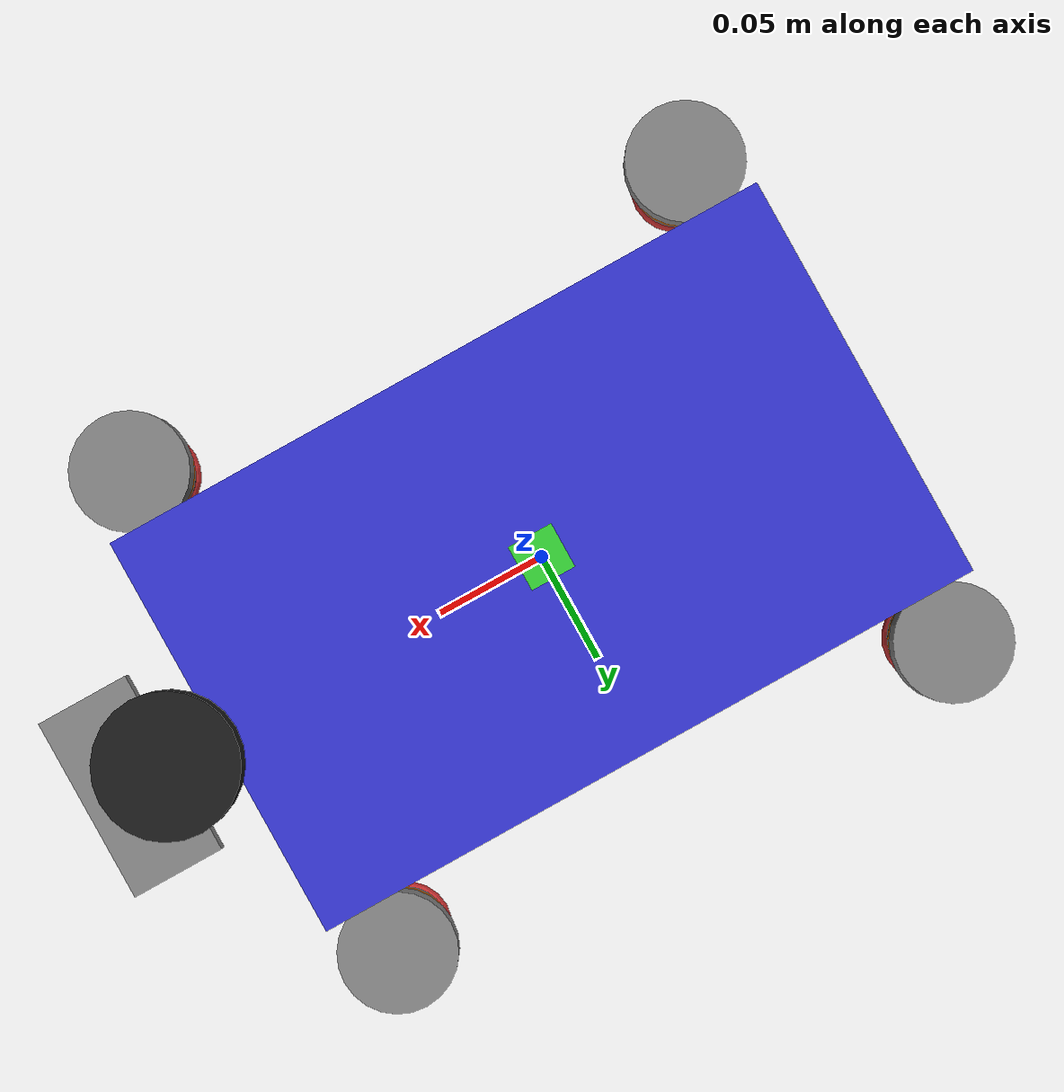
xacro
<?xml version="1.0"?>
<robot name="puppy" xmlns:xacro="http://www.ros.org/wiki/xacro">

  <xacro:arg name="use_planar_move" default="true"/>

  <!-- Include all xacro files -->
  <xacro:include filename="$(find puppy_description)/urdf/materials.xacro"/>
  <xacro:include filename="$(find puppy_description)/urdf/macros.xacro"/>
  <xacro:include filename="$(find puppy_description)/urdf/torso.xacro"/>
  <xacro:include filename="$(find puppy_description)/urdf/leg.xacro"/>
  <xacro:include filename="$(find puppy_description)/urdf/sensors.xacro"/>
  <xacro:include filename="$(find puppy_description)/urdf/gazebo_control.xacro"/>

  <!-- Robot parameters -->
  <xacro:property name="body_length" value="0.30"/>
  <xacro:property name="body_width" value="0.18"/>
  <xacro:property name="body_height" value="0.10"/>
  <xacro:property name="body_mass" value="2.5"/>

  <xacro:property name="L1" value="0.105"/>
  <xacro:property name="L2" value="0.115"/>
  <xacro:property name="thigh_radius" value="0.022"/>
  <xacro:property name="thigh_length" value="${L1}"/>
  <xacro:property name="calf_radius" value="0.018"/>
  <xacro:property name="calf_length" value="${L2}"/>
  <xacro:property name="hip_radius" value="0.025"/>
  <xacro:property name="hip_length" value="0.045"/>
  <xacro:property name="leg_mass" value="0.20"/>

  <xacro:property name="stand_height" value="0.205"/>

  <!-- Build the robot -->
  <xacro:torso/>

  <!-- 4 legs: FR, FL, RR, RL -->
  <xacro:leg prefix="FR" side="front" y_offset="${-body_width/2 - hip_length/2}"/>
  <xacro:leg prefix="FL" side="front" y_offset="${body_width/2 + hip_length/2}"/>
  <xacro:leg prefix="RR" side="rear"  y_offset="${-body_width/2 - hip_length/2}"/>
  <xacro:leg prefix="RL" side="rear"  y_offset="${body_width/2 + hip_length/2}"/>

  <!-- Sensors -->
  <xacro:sensors/>

  <!-- Gazebo control -->
  <xacro:gazebo_control use_planar_move="$(arg use_planar_move)"/>

</robot>

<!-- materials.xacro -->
<robot name="materials" xmlns:xacro="http://www.ros.org/wiki/xacro">

  <material name="black">
    <color rgba="0.1 0.1 0.1 1.0"/>
  </material>

  <material name="white">
    <color rgba="0.9 0.9 0.9 1.0"/>
  </material>

  <material name="blue">
    <color rgba="0.2 0.2 0.8 1.0"/>
  </material>

  <material name="red">
    <color rgba="0.8 0.2 0.2 1.0"/>
  </material>

  <material name="green">
    <color rgba="0.2 0.8 0.2 1.0"/>
  </material>

  <material name="grey">
    <color rgba="0.5 0.5 0.5 1.0"/>
  </material>

  <material name="orange">
    <color rgba="1.0 0.5 0.0 1.0"/>
  </material>

</robot>

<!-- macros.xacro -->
<robot name="macros" xmlns:xacro="http://www.ros.org/wiki/xacro">

  <!-- Inertia macro for a box -->
  <xacro:macro name="box_inertia" params="m w h d">
    <inertial>
      <mass value="${m}"/>
      <origin xyz="0 0 0" rpy="0 0 0"/>
      <inertia ixx="${m*(h*h+d*d)/12.0}" ixy="0" ixz="0"
               iyy="${m*(w*w+d*d)/12.0}" iyz="0"
               izz="${m*(w*w+h*h)/12.0}"/>
    </inertial>
  </xacro:macro>

  <!-- Inertia macro for a cylinder -->
  <xacro:macro name="cylinder_inertia" params="m r l">
    <inertial>
      <mass value="${m}"/>
      <origin xyz="0 0 0" rpy="0 0 0"/>
      <inertia ixx="${m*(3*r*r+l*l)/12.0}" ixy="0" ixz="0"
               iyy="${m*(3*r*r+l*l)/12.0}" iyz="0"
               izz="${m*r*r/2.0}"/>
    </inertial>
  </xacro:macro>

  <!-- Inertia macro for a sphere -->
  <xacro:macro name="sphere_inertia" params="m r">
    <inertial>
      <mass value="${m}"/>
      <origin xyz="0 0 0" rpy="0 0 0"/>
      <inertia ixx="${2*m*r*r/5.0}" ixy="0" ixz="0"
               iyy="${2*m*r*r/5.0}" iyz="0"
               izz="${2*m*r*r/5.0}"/>
    </inertial>
  </xacro:macro>

  <!-- Transmission macro -->
  <xacro:macro name="transmission_block" params="joint_name">
    <transmission name="${joint_name}_trans">
      <type>transmission_interface/SimpleTransmission</type>
      <joint name="${joint_name}">
        <hardwareInterface>hardware_interface/EffortJointInterface</hardwareInterface>
      </joint>
      <actuator name="${joint_name}_motor">
        <hardwareInterface>hardware_interface/EffortJointInterface</hardwareInterface>
        <mechanicalReduction>1</mechanicalReduction>
      </actuator>
    </transmission>
  </xacro:macro>

</robot>

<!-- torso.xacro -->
<robot name="torso" xmlns:xacro="http://www.ros.org/wiki/xacro">

  <xacro:macro name="torso">

    <!-- Base link (robot root) -->
    <link name="base_link">
      <visual>
        <origin xyz="0 0 0" rpy="0 0 0"/>
        <geometry>
          <box size="${body_length} ${body_width} ${body_height}"/>
        </geometry>
        <material name="blue"/>
      </visual>
      <collision>
        <origin xyz="0 0 0" rpy="0 0 0"/>
        <geometry>
          <box size="${body_length} ${body_width} ${body_height}"/>
        </geometry>
      </collision>
      <xacro:box_inertia m="${body_mass}" w="${body_width}" h="${body_height}" d="${body_length}"/>
    </link>

    <!-- base_footprint: projected on ground (for Nav2), must be root parent -->
    <link name="base_footprint"/>
    <joint name="base_footprint_to_base_link" type="fixed">
      <parent link="base_footprint"/>
      <child link="base_link"/>
      <origin xyz="0 0 ${stand_height}" rpy="0 0 0"/>
    </joint>

    <!-- Gazebo friction for base_link -->
    <gazebo reference="base_link">
      <material>Gazebo/Blue</material>
    </gazebo>

  </xacro:macro>

</robot>

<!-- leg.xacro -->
<robot name="leg" xmlns:xacro="http://www.ros.org/wiki/xacro">

  <!-- Leg macro: 3-DoF (hip_yaw, hip_pitch, knee) -->
  <xacro:macro name="leg" params="prefix side y_offset">

    <!-- X position: front legs at +x, rear legs at -x -->
    <xacro:if value="${side == 'front'}">
      <xacro:property name="x_pos" value="${body_length/2 - 0.02}"/>
    </xacro:if>
    <xacro:unless value="${side == 'front'}">
      <xacro:property name="x_pos" value="${-(body_length/2 - 0.02)}"/>
    </xacro:unless>

    <!-- Hip yaw link (side motor housing) -->
    <link name="${prefix}_hip_yaw_link">
      <visual>
        <origin xyz="0 0 0" rpy="0 0 0"/>
        <geometry>
          <cylinder radius="${hip_radius}" length="${hip_length}"/>
        </geometry>
        <material name="grey"/>
      </visual>
      <collision>
        <origin xyz="0 0 0" rpy="${pi/2} 0 0"/>
        <geometry>
          <cylinder radius="${hip_radius}" length="${hip_length}"/>
        </geometry>
      </collision>
      <xacro:cylinder_inertia m="0.3" r="${hip_radius}" l="${hip_length}"/>
    </link>

    <!-- Hip yaw joint (fixed) -->
    <joint name="${prefix}_hip_yaw_joint" type="revolute">
      <parent link="base_link"/>
      <child link="${prefix}_hip_yaw_link"/>
      <origin xyz="${x_pos} ${y_offset} 0" rpy="0 0 0"/>
      <axis xyz="0 1 0"/>
      <limit lower="-0.55" upper="0.55" effort="3.0" velocity="4.0"/>
    </joint>

    <!-- Hip pitch link (thigh) -->
    <link name="${prefix}_thigh_link">
      <visual>
        <origin xyz="0 0 ${-L1/2}" rpy="0 0 0"/>
        <geometry>
          <cylinder radius="${thigh_radius}" length="${L1}"/>
        </geometry>
        <material name="orange"/>
      </visual>
      <collision>
        <origin xyz="0 0 ${-L1/2}" rpy="0 0 0"/>
        <geometry>
          <cylinder radius="${thigh_radius}" length="${L1}"/>
        </geometry>
      </collision>
      <xacro:cylinder_inertia m="${leg_mass}" r="${thigh_radius}" l="${L1}"/>
    </link>

    <!-- Hip pitch joint (fixed) -->
    <joint name="${prefix}_hip_pitch_joint" type="revolute">
      <parent link="${prefix}_hip_yaw_link"/>
      <child link="${prefix}_thigh_link"/>
      <origin xyz="0 0 0" rpy="0 0 0"/>
      <axis xyz="0 1 0"/>
      <limit lower="-1.35" upper="1.35" effort="3.0" velocity="5.0"/>
    </joint>

    <!-- Calf link (shin) -->
    <link name="${prefix}_calf_link">
      <visual>
        <origin xyz="0 0 ${-L2/2}" rpy="0 0 0"/>
        <geometry>
          <cylinder radius="${calf_radius}" length="${L2}"/>
        </geometry>
        <material name="black"/>
      </visual>
      <collision>
        <origin xyz="0 0 ${-L2/2}" rpy="0 0 0"/>
        <geometry>
          <cylinder radius="${calf_radius}" length="${L2}"/>
        </geometry>
      </collision>
      <xacro:cylinder_inertia m="${leg_mass * 0.7}" r="${calf_radius}" l="${L2}"/>
    </link>

    <!-- Knee joint (fixed) -->
    <joint name="${prefix}_knee_joint" type="revolute">
      <parent link="${prefix}_thigh_link"/>
      <child link="${prefix}_calf_link"/>
      <origin xyz="0 0 ${-L1}" rpy="0 0 0"/>
      <axis xyz="0 1 0"/>
      <limit lower="-2.35" upper="0.15" effort="3.0" velocity="5.0"/>
    </joint>

    <!-- Foot tip (sphere for contact) -->
    <link name="${prefix}_foot_link">
      <visual>
        <origin xyz="0 0 0" rpy="0 0 0"/>
        <geometry>
          <sphere radius="0.02"/>
        </geometry>
        <material name="red"/>
      </visual>
      <collision>
        <origin xyz="0 0 0" rpy="0 0 0"/>
        <geometry>
          <sphere radius="0.02"/>
        </geometry>
      </collision>
      <xacro:sphere_inertia m="0.1" r="0.02"/>
    </link>

    <joint name="${prefix}_foot_joint" type="fixed">
      <parent link="${prefix}_calf_link"/>
      <child link="${prefix}_foot_link"/>
      <origin xyz="0 0 ${-L2}" rpy="0 0 0"/>
    </joint>

    <!-- Gazebo materials -->
    <gazebo reference="${prefix}_hip_yaw_link">
      <material>Gazebo/Grey</material>
      <mu1>0.3</mu1><mu2>0.3</mu2>
    </gazebo>
    <gazebo reference="${prefix}_thigh_link">
      <material>Gazebo/Orange</material>
    </gazebo>
    <gazebo reference="${prefix}_calf_link">
      <material>Gazebo/Black</material>
    </gazebo>
    <gazebo reference="${prefix}_foot_link">
      <material>Gazebo/Red</material>
      <mu1>1.0</mu1><mu2>1.0</mu2>
      <kp>1000000.0</kp>
      <kd>100.0</kd>
    </gazebo>

  </xacro:macro>

</robot>

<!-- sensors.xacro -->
<robot name="sensors" xmlns:xacro="http://www.ros.org/wiki/xacro">

  <xacro:macro name="sensors">

    <!-- ==================== IMU ==================== -->
    <link name="imu_link">
      <visual>
        <geometry><box size="0.02 0.02 0.01"/></geometry>
        <material name="green"/>
      </visual>
      <xacro:box_inertia m="0.01" w="0.02" h="0.01" d="0.02"/>
    </link>

    <joint name="imu_joint" type="fixed">
      <parent link="base_link"/>
      <child link="imu_link"/>
      <origin xyz="0 0 ${body_height/2}" rpy="0 0 0"/>
    </joint>

    <gazebo reference="imu_link">
      <sensor name="imu_sensor" type="imu">
        <always_on>1</always_on>
        <update_rate>100</update_rate>
        <imu>
          <angular_velocity>
            <x><noise type="gaussian"><mean>0.0</mean><stddev>0.001</stddev></noise></x>
            <y><noise type="gaussian"><mean>0.0</mean><stddev>0.001</stddev></noise></y>
            <z><noise type="gaussian"><mean>0.0</mean><stddev>0.001</stddev></noise></z>
          </angular_velocity>
          <linear_acceleration>
            <x><noise type="gaussian"><mean>0.0</mean><stddev>0.001</stddev></noise></x>
            <y><noise type="gaussian"><mean>0.0</mean><stddev>0.001</stddev></noise></y>
            <z><noise type="gaussian"><mean>0.0</mean><stddev>0.001</stddev></noise></z>
          </linear_acceleration>
        </imu>
        <plugin name="imu_plugin" filename="libgazebo_ros_imu_sensor.so">
          <ros>
            <namespace>/</namespace>
            <remapping>~/out:=imu/data</remapping>
          </ros>
          <frame_name>imu_link</frame_name>
          <initial_orientation_as_reference>false</initial_orientation_as_reference>
        </plugin>
      </sensor>
    </gazebo>

    <!-- ==================== 2D LiDAR ==================== -->
    <link name="laser_link">
      <visual>
        <geometry><cylinder radius="0.03" length="0.05"/></geometry>
        <material name="black"/>
      </visual>
      <collision>
        <geometry><cylinder radius="0.03" length="0.05"/></geometry>
      </collision>
      <xacro:cylinder_inertia m="0.1" r="0.03" l="0.05"/>
    </link>

    <joint name="laser_joint" type="fixed">
      <parent link="base_link"/>
      <child link="laser_link"/>
      <origin xyz="${body_length/2 + 0.02} 0 ${body_height/2 + 0.06}" rpy="0 0 0"/>
    </joint>

    <gazebo reference="laser_link">
      <sensor name="laser_sensor" type="ray">
        <always_on>1</always_on>
        <update_rate>10</update_rate>
        <ray>
          <scan>
            <horizontal>
              <samples>360</samples>
              <resolution>1</resolution>
              <min_angle>-3.14159</min_angle>
              <max_angle>3.14159</max_angle>
            </horizontal>
          </scan>
          <range>
            <min>0.10</min>
            <max>12.0</max>
            <resolution>0.01</resolution>
          </range>
          <noise>
            <type>gaussian</type>
            <mean>0.0</mean>
            <stddev>0.01</stddev>
          </noise>
        </ray>
        <plugin name="laser_plugin" filename="libgazebo_ros_ray_sensor.so">
          <ros>
            <namespace>/</namespace>
            <remapping>~/out:=scan</remapping>
          </ros>
          <output_type>sensor_msgs/LaserScan</output_type>
          <frame_name>laser_link</frame_name>
        </plugin>
      </sensor>
    </gazebo>

    <!-- ==================== RGB-D Camera ==================== -->
    <link name="camera_link">
      <visual>
        <geometry><box size="0.04 0.08 0.03"/></geometry>
        <material name="grey"/>
      </visual>
      <collision>
        <geometry><box size="0.04 0.08 0.03"/></geometry>
      </collision>
      <xacro:box_inertia m="0.1" w="0.08" h="0.03" d="0.04"/>
    </link>

    <joint name="camera_joint" type="fixed">
      <parent link="base_link"/>
      <child link="camera_link"/>
      <origin xyz="${body_length/2 + 0.04} 0 ${body_height/2}" rpy="0 0 0"/>
    </joint>

    <link name="camera_depth_frame"/>
    <joint name="camera_depth_joint" type="fixed">
      <parent link="camera_link"/>
      <child link="camera_depth_frame"/>
      <origin xyz="0 0 0" rpy="0 0 0"/>
    </joint>

    <gazebo reference="camera_link">
      <sensor name="depth_camera" type="depth">
        <always_on>1</always_on>
        <update_rate>10</update_rate>
        <camera>
          <horizontal_fov>1.047</horizontal_fov>
          <image>
            <width>640</width>
            <height>480</height>
            <format>R8G8B8</format>
          </image>
          <clip>
            <near>0.1</near>
            <far>5.0</far>
          </clip>
        </camera>
        <plugin name="depth_camera_plugin" filename="libgazebo_ros_camera.so">
          <ros>
            <namespace>/camera</namespace>
            <remapping>image_raw:=color/image_raw</remapping>
            <remapping>depth/image_raw:=depth/image_raw</remapping>
            <remapping>camera_info:=color/camera_info</remapping>
            <remapping>depth/camera_info:=depth/camera_info</remapping>
          </ros>
          <frame_name>camera_depth_frame</frame_name>
          <min_depth>0.1</min_depth>
          <max_depth>5.0</max_depth>
        </plugin>
      </sensor>
    </gazebo>

  </xacro:macro>

</robot>
